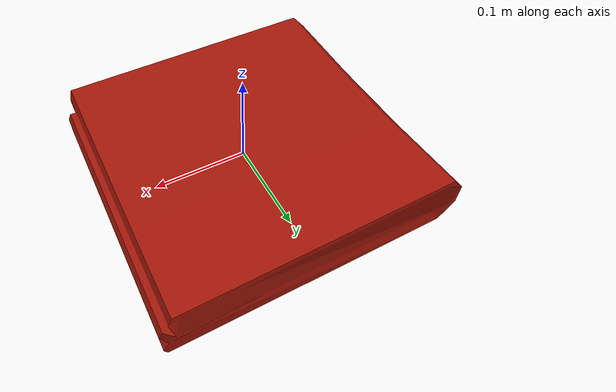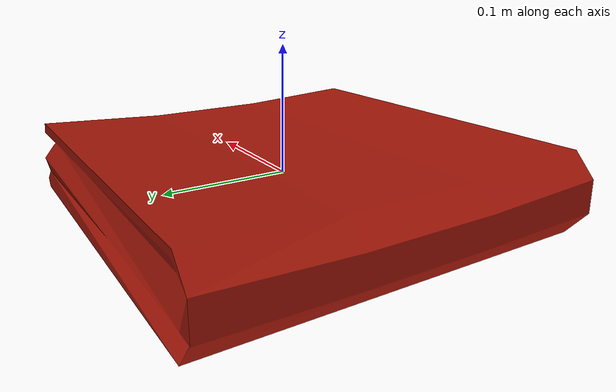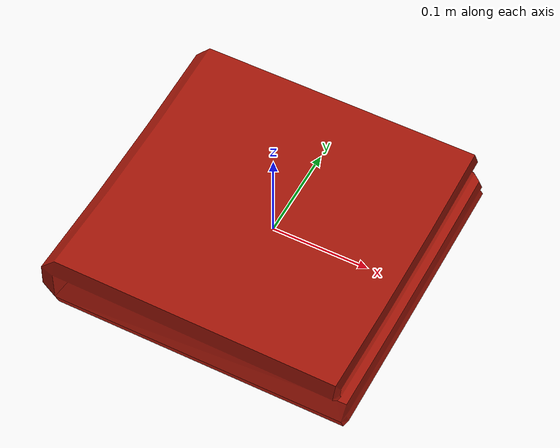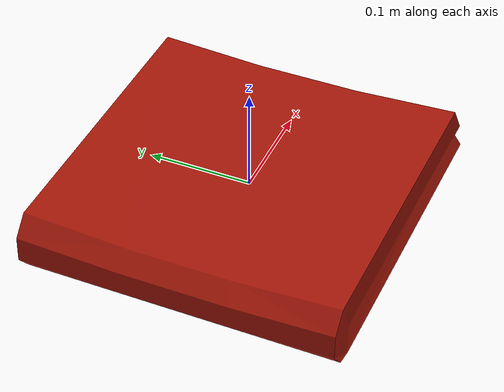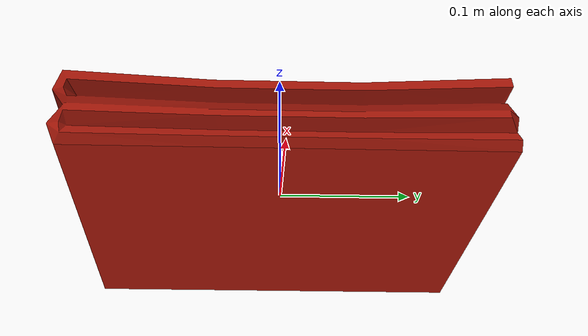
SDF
<?xml version='1.0'?>
<sdf version="1.4">
	<model name="towel1">
		<static>1</static>
		<link name="link">
			<visual name="mesh">
				<geometry>
					<mesh>
						<uri>model://meshes/towel1.dae</uri>
					</mesh>
				</geometry>
			</visual>
			<collision name="collider">
				<pose>0 0 0 0 0 0</pose>
				<geometry>
					<box>
						<size>0.32 0.3 0.063</size>
					</box>
				</geometry>
			</collision>
		</link>
	</model>
</sdf>
